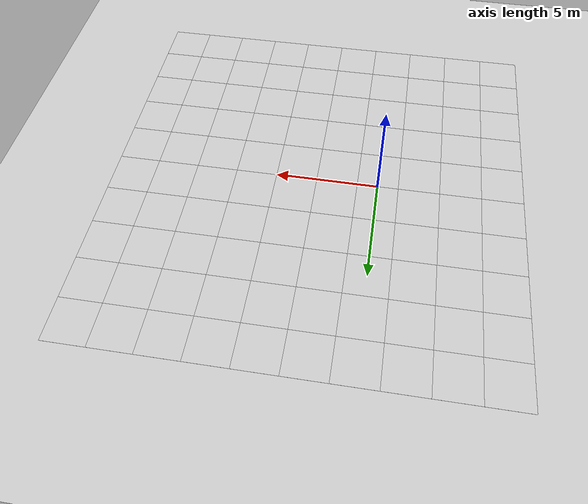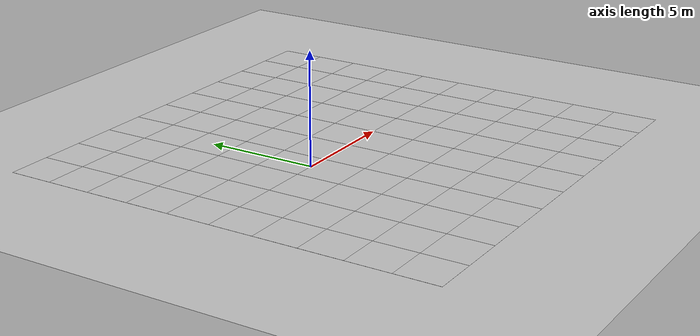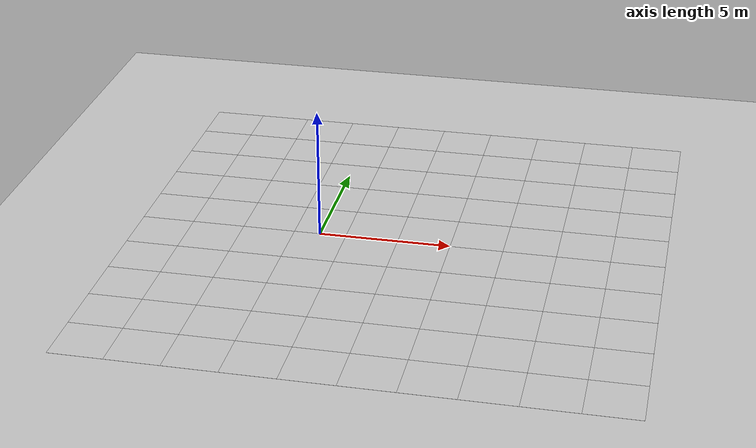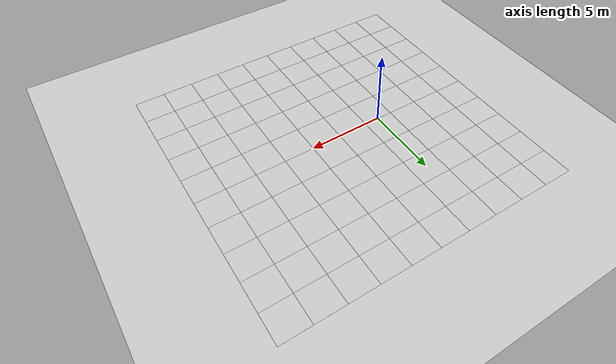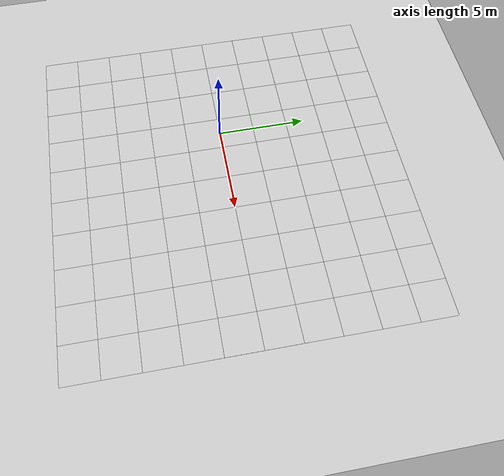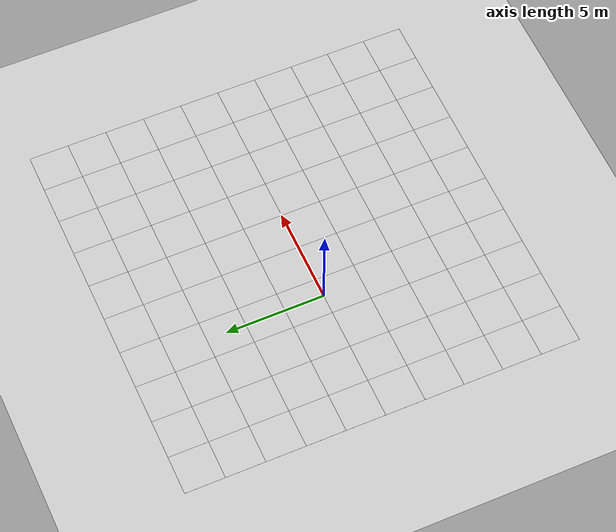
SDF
<sdf version="1.9">
 <world name="default">
  <model name="ground_plane">
   <static>true</static>
   <link name="link">
    <collision name="collision">
     <geometry><plane><normal>0 0 1</normal><size>1 1</size></plane></geometry>
    </collision>
    <visual name="visual">
     <geometry><plane><normal>0 0 1</normal><size>500 500</size></plane></geometry>
     <material>
      <ambient>0.8 0.8 0.8 1</ambient>
      <diffuse>0.8 0.8 0.8 1</diffuse>
      <specular>0.8 0.8 0.8 1</specular>
      <pbr>
       <metal>
        <albedo_map>models://ground_plane_textures/brown_mud_dry_diff_4k.jpg</albedo_map>
        <roughness>0.9</roughness>
        <metalness>0.0</metalness>
       </metal>
      </pbr>
     </material>
    </visual>
    <inertial>
     <mass>1</mass>
     <inertia><ixx>1</ixx><ixy>0</ixy><ixz>0</ixz><iyy>1</iyy><iyz>0</iyz><izz>1</izz></inertia>
    </inertial>
   </link>
  </model>
  <model name="soil_grid">
   <static>true</static>
   <link name="link">
    <visual name="soil_patch_1">
     <pose>-6.000 -9.000 0.005 0 0 0</pose>
     <geometry><plane><normal>0 0 1</normal><size>2.000 2.000</size></plane></geometry>
     <material>
      <ambient>0.8 0.8 0.8 1</ambient>
      <diffuse>0.8 0.8 0.8 1</diffuse>
      <specular>0.1 0.1 0.1 1</specular>
      <pbr>
       <metal>
        <albedo_map>models://ground_plane_textures/brown_mud_dry_diff_4k.jpg</albedo_map>
        <roughness>0.9</roughness>
        <metalness>0.0</metalness>
       </metal>
      </pbr>
     </material>
    </visual>
    <visual name="soil_patch_2">
     <pose>-6.000 -7.000 0.005 0 0 0</pose>
     <geometry><plane><normal>0 0 1</normal><size>2.000 2.000</size></plane></geometry>
     <material>
      <ambient>0.8 0.8 0.8 1</ambient>
      <diffuse>0.8 0.8 0.8 1</diffuse>
      <specular>0.1 0.1 0.1 1</specular>
      <pbr>
       <metal>
        <albedo_map>models://ground_plane_textures/brown_mud_dry_diff_4k.jpg</albedo_map>
        <roughness>0.9</roughness>
        <metalness>0.0</metalness>
       </metal>
      </pbr>
     </material>
    </visual>
    <visual name="soil_patch_3">
     <pose>-6.000 -5.000 0.005 0 0 0</pose>
     <geometry><plane><normal>0 0 1</normal><size>2.000 2.000</size></plane></geometry>
     <material>
      <ambient>0.8 0.8 0.8 1</ambient>
      <diffuse>0.8 0.8 0.8 1</diffuse>
      <specular>0.1 0.1 0.1 1</specular>
      <pbr>
       <metal>
        <albedo_map>models://ground_plane_textures/brown_mud_dry_diff_4k.jpg</albedo_map>
        <roughness>0.9</roughness>
        <metalness>0.0</metalness>
       </metal>
      </pbr>
     </material>
    </visual>
    <visual name="soil_patch_4">
     <pose>-6.000 -3.000 0.005 0 0 0</pose>
     <geometry><plane><normal>0 0 1</normal><size>2.000 2.000</size></plane></geometry>
     <material>
      <ambient>0.8 0.8 0.8 1</ambient>
      <diffuse>0.8 0.8 0.8 1</diffuse>
      <specular>0.1 0.1 0.1 1</specular>
      <pbr>
       <metal>
        <albedo_map>models://ground_plane_textures/brown_mud_dry_diff_4k.jpg</albedo_map>
        <roughness>0.9</roughness>
        <metalness>0.0</metalness>
       </metal>
      </pbr>
     </material>
    </visual>
    <visual name="soil_patch_5">
     <pose>-6.000 -1.000 0.005 0 0 0</pose>
     <geometry><plane><normal>0 0 1</normal><size>2.000 2.000</size></plane></geometry>
     <material>
      <ambient>0.8 0.8 0.8 1</ambient>
      <diffuse>0.8 0.8 0.8 1</diffuse>
      <specular>0.1 0.1 0.1 1</specular>
      <pbr>
       <metal>
        <albedo_map>models://ground_plane_textures/brown_mud_dry_diff_4k.jpg</albedo_map>
        <roughness>0.9</roughness>
        <metalness>0.0</metalness>
       </metal>
      </pbr>
     </material>
    </visual>
    <visual name="soil_patch_6">
     <pose>-6.000 1.000 0.005 0 0 0</pose>
     <geometry><plane><normal>0 0 1</normal><size>2.000 2.000</size></plane></geometry>
     <material>
      <ambient>0.8 0.8 0.8 1</ambient>
      <diffuse>0.8 0.8 0.8 1</diffuse>
      <specular>0.1 0.1 0.1 1</specular>
      <pbr>
       <metal>
        <albedo_map>models://ground_plane_textures/brown_mud_dry_diff_4k.jpg</albedo_map>
        <roughness>0.9</roughness>
        <metalness>0.0</metalness>
       </metal>
      </pbr>
     </material>
    </visual>
    <visual name="soil_patch_7">
     <pose>-6.000 3.000 0.005 0 0 0</pose>
     <geometry><plane><normal>0 0 1</normal><size>2.000 2.000</size></plane></geometry>
     <material>
      <ambient>0.8 0.8 0.8 1</ambient>
      <diffuse>0.8 0.8 0.8 1</diffuse>
      <specular>0.1 0.1 0.1 1</specular>
      <pbr>
       <metal>
        <albedo_map>models://ground_plane_textures/brown_mud_dry_diff_4k.jpg</albedo_map>
        <roughness>0.9</roughness>
        <metalness>0.0</metalness>
       </metal>
      </pbr>
     </material>
    </visual>
    <visual name="soil_patch_8">
     <pose>-6.000 5.000 0.005 0 0 0</pose>
     <geometry><plane><normal>0 0 1</normal><size>2.000 2.000</size></plane></geometry>
     <material>
      <ambient>0.8 0.8 0.8 1</ambient>
      <diffuse>0.8 0.8 0.8 1</diffuse>
      <specular>0.1 0.1 0.1 1</specular>
      <pbr>
       <metal>
        <albedo_map>models://ground_plane_textures/brown_mud_dry_diff_4k.jpg</albedo_map>
        <roughness>0.9</roughness>
        <metalness>0.0</metalness>
       </metal>
      </pbr>
     </material>
    </visual>
    <visual name="soil_patch_9">
     <pose>-6.000 7.000 0.005 0 0 0</pose>
     <geometry><plane><normal>0 0 1</normal><size>2.000 2.000</size></plane></geometry>
     <material>
      <ambient>0.8 0.8 0.8 1</ambient>
      <diffuse>0.8 0.8 0.8 1</diffuse>
      <specular>0.1 0.1 0.1 1</specular>
      <pbr>
       <metal>
        <albedo_map>models://ground_plane_textures/brown_mud_dry_diff_4k.jpg</albedo_map>
        <roughness>0.9</roughness>
        <metalness>0.0</metalness>
       </metal>
      </pbr>
     </material>
    </visual>
    <visual name="soil_patch_10">
     <pose>-6.000 9.000 0.005 0 0 0</pose>
     <geometry><plane><normal>0 0 1</normal><size>2.000 2.000</size></plane></geometry>
     <material>
      <ambient>0.8 0.8 0.8 1</ambient>
      <diffuse>0.8 0.8 0.8 1</diffuse>
      <specular>0.1 0.1 0.1 1</specular>
      <pbr>
       <metal>
        <albedo_map>models://ground_plane_textures/brown_mud_dry_diff_4k.jpg</albedo_map>
        <roughness>0.9</roughness>
        <metalness>0.0</metalness>
       </metal>
      </pbr>
     </material>
    </visual>
    <visual name="soil_patch_11">
     <pose>-4.000 -9.000 0.005 0 0 0</pose>
     <geometry><plane><normal>0 0 1</normal><size>2.000 2.000</size></plane></geometry>
     <material>
      <ambient>0.8 0.8 0.8 1</ambient>
      <diffuse>0.8 0.8 0.8 1</diffuse>
      <specular>0.1 0.1 0.1 1</specular>
      <pbr>
       <metal>
        <albedo_map>models://ground_plane_textures/brown_mud_dry_diff_4k.jpg</albedo_map>
        <roughness>0.9</roughness>
        <metalness>0.0</metalness>
       </metal>
      </pbr>
     </material>
    </visual>
    <visual name="soil_patch_12">
     <pose>-4.000 -7.000 0.005 0 0 0</pose>
     <geometry><plane><normal>0 0 1</normal><size>2.000 2.000</size></plane></geometry>
     <material>
      <ambient>0.8 0.8 0.8 1</ambient>
      <diffuse>0.8 0.8 0.8 1</diffuse>
      <specular>0.1 0.1 0.1 1</specular>
      <pbr>
       <metal>
        <albedo_map>models://ground_plane_textures/brown_mud_dry_diff_4k.jpg</albedo_map>
        <roughness>0.9</roughness>
        <metalness>0.0</metalness>
       </metal>
      </pbr>
     </material>
    </visual>
    <visual name="soil_patch_13">
     <pose>-4.000 -5.000 0.005 0 0 0</pose>
     <geometry><plane><normal>0 0 1</normal><size>2.000 2.000</size></plane></geometry>
     <material>
      <ambient>0.8 0.8 0.8 1</ambient>
      <diffuse>0.8 0.8 0.8 1</diffuse>
      <specular>0.1 0.1 0.1 1</specular>
      <pbr>
       <metal>
        <albedo_map>models://ground_plane_textures/brown_mud_dry_diff_4k.jpg</albedo_map>
        <roughness>0.9</roughness>
        <metalness>0.0</metalness>
       </metal>
      </pbr>
     </material>
    </visual>
    <visual name="soil_patch_14">
     <pose>-4.000 -3.000 0.005 0 0 0</pose>
     <geometry><plane><normal>0 0 1</normal><size>2.000 2.000</size></plane></geometry>
     <material>
      <ambient>0.8 0.8 0.8 1</ambient>
      <diffuse>0.8 0.8 0.8 1</diffuse>
      <specular>0.1 0.1 0.1 1</specular>
      <pbr>
       <metal>
        <albedo_map>models://ground_plane_textures/brown_mud_dry_diff_4k.jpg</albedo_map>
        <roughness>0.9</roughness>
        <metalness>0.0</metalness>
       </metal>
      </pbr>
     </material>
    </visual>
    <visual name="soil_patch_15">
     <pose>-4.000 -1.000 0.005 0 0 0</pose>
     <geometry><plane><normal>0 0 1</normal><size>2.000 2.000</size></plane></geometry>
     <material>
      <ambient>0.8 0.8 0.8 1</ambient>
      <diffuse>0.8 0.8 0.8 1</diffuse>
      <specular>0.1 0.1 0.1 1</specular>
      <pbr>
       <metal>
        <albedo_map>models://ground_plane_textures/brown_mud_dry_diff_4k.jpg</albedo_map>
        <roughness>0.9</roughness>
        <metalness>0.0</metalness>
       </metal>
      </pbr>
     </material>
    </visual>
    <visual name="soil_patch_16">
     <pose>-4.000 1.000 0.005 0 0 0</pose>
     <geometry><plane><normal>0 0 1</normal><size>2.000 2.000</size></plane></geometry>
     <material>
      <ambient>0.8 0.8 0.8 1</ambient>
      <diffuse>0.8 0.8 0.8 1</diffuse>
      <specular>0.1 0.1 0.1 1</specular>
      <pbr>
       <metal>
        <albedo_map>models://ground_plane_textures/brown_mud_dry_diff_4k.jpg</albedo_map>
        <roughness>0.9</roughness>
        <metalness>0.0</metalness>
       </metal>
      </pbr>
     </material>
    </visual>
    <visual name="soil_patch_17">
     <pose>-4.000 3.000 0.005 0 0 0</pose>
     <geometry><plane><normal>0 0 1</normal><size>2.000 2.000</size></plane></geometry>
     <material>
      <ambient>0.8 0.8 0.8 1</ambient>
      <diffuse>0.8 0.8 0.8 1</diffuse>
      <specular>0.1 0.1 0.1 1</specular>
      <pbr>
       <metal>
        <albedo_map>models://ground_plane_textures/brown_mud_dry_diff_4k.jpg</albedo_map>
        <roughness>0.9</roughness>
        <metalness>0.0</metalness>
       </metal>
      </pbr>
     </material>
    </visual>
    <visual name="soil_patch_18">
     <pose>-4.000 5.000 0.005 0 0 0</pose>
     <geometry><plane><normal>0 0 1</normal><size>2.000 2.000</size></plane></geometry>
     <material>
      <ambient>0.8 0.8 0.8 1</ambient>
      <diffuse>0.8 0.8 0.8 1</diffuse>
      <specular>0.1 0.1 0.1 1</specular>
      <pbr>
       <metal>
        <albedo_map>models://ground_plane_textures/brown_mud_dry_diff_4k.jpg</albedo_map>
        <roughness>0.9</roughness>
        <metalness>0.0</metalness>
       </metal>
      </pbr>
     </material>
    </visual>
    <visual name="soil_patch_19">
     <pose>-4.000 7.000 0.005 0 0 0</pose>
     <geometry><plane><normal>0 0 1</normal><size>2.000 2.000</size></plane></geometry>
     <material>
      <ambient>0.8 0.8 0.8 1</ambient>
      <diffuse>0.8 0.8 0.8 1</diffuse>
      <specular>0.1 0.1 0.1 1</specular>
      <pbr>
       <metal>
        <albedo_map>models://ground_plane_textures/brown_mud_dry_diff_4k.jpg</albedo_map>
        <roughness>0.9</roughness>
        <metalness>0.0</metalness>
       </metal>
      </pbr>
     </material>
    </visual>
    <visual name="soil_patch_20">
     <pose>-4.000 9.000 0.005 0 0 0</pose>
     <geometry><plane><normal>0 0 1</normal><size>2.000 2.000</size></plane></geometry>
     <material>
      <ambient>0.8 0.8 0.8 1</ambient>
      <diffuse>0.8 0.8 0.8 1</diffuse>
      <specular>0.1 0.1 0.1 1</specular>
      <pbr>
       <metal>
        <albedo_map>models://ground_plane_textures/brown_mud_dry_diff_4k.jpg</albedo_map>
        <roughness>0.9</roughness>
        <metalness>0.0</metalness>
       </metal>
      </pbr>
     </material>
    </visual>
    <visual name="soil_patch_21">
     <pose>-2.000 -9.000 0.005 0 0 0</pose>
     <geometry><plane><normal>0 0 1</normal><size>2.000 2.000</size></plane></geometry>
     <material>
      <ambient>0.8 0.8 0.8 1</ambient>
      <diffuse>0.8 0.8 0.8 1</diffuse>
      <specular>0.1 0.1 0.1 1</specular>
      <pbr>
       <metal>
        <albedo_map>models://ground_plane_textures/brown_mud_dry_diff_4k.jpg</albedo_map>
        <roughness>0.9</roughness>
        <metalness>0.0</metalness>
       </metal>
      </pbr>
     </material>
    </visual>
    <visual name="soil_patch_22">
     <pose>-2.000 -7.000 0.005 0 0 0</pose>
     <geometry><plane><normal>0 0 1</normal><size>2.000 2.000</size></plane></geometry>
     <material>
      <ambient>0.8 0.8 0.8 1</ambient>
      <diffuse>0.8 0.8 0.8 1</diffuse>
      <specular>0.1 0.1 0.1 1</specular>
      <pbr>
       <metal>
        <albedo_map>models://ground_plane_textures/brown_mud_dry_diff_4k.jpg</albedo_map>
        <roughness>0.9</roughness>
        <metalness>0.0</metalness>
       </metal>
      </pbr>
     </material>
    </visual>
    <visual name="soil_patch_23">
     <pose>-2.000 -5.000 0.005 0 0 0</pose>
     <geometry><plane><normal>0 0 1</normal><size>2.000 2.000</size></plane></geometry>
     <material>
      <ambient>0.8 0.8 0.8 1</ambient>
      <diffuse>0.8 0.8 0.8 1</diffuse>
      <specular>0.1 0.1 0.1 1</specular>
      <pbr>
       <metal>
        <albedo_map>models://ground_plane_textures/brown_mud_dry_diff_4k.jpg</albedo_map>
        <roughness>0.9</roughness>
        <metalness>0.0</metalness>
       </metal>
      </pbr>
     </material>
    </visual>
    <visual name="soil_patch_24">
     <pose>-2.000 -3.000 0.005 0 0 0</pose>
     <geometry><plane><normal>0 0 1</normal><size>2.000 2.000</size></plane></geometry>
     <material>
      <ambient>0.8 0.8 0.8 1</ambient>
      <diffuse>0.8 0.8 0.8 1</diffuse>
      <specular>0.1 0.1 0.1 1</specular>
      <pbr>
       <metal>
        <albedo_map>models://ground_plane_textures/brown_mud_dry_diff_4k.jpg</albedo_map>
        <roughness>0.9</roughness>
        <metalness>0.0</metalness>
       </metal>
      </pbr>
     </material>
    </visual>
    <visual name="soil_patch_25">
     <pose>-2.000 -1.000 0.005 0 0 0</pose>
     <geometry><plane><normal>0 0 1</normal><size>2.000 2.000</size></plane></geometry>
     <material>
      <ambient>0.8 0.8 0.8 1</ambient>
      <diffuse>0.8 0.8 0.8 1</diffuse>
      <specular>0.1 0.1 0.1 1</specular>
      <pbr>
       <metal>
        <albedo_map>models://ground_plane_textures/brown_mud_dry_diff_4k.jpg</albedo_map>
        <roughness>0.9</roughness>
        <metalness>0.0</metalness>
       </metal>
      </pbr>
     </material>
    </visual>
    <visual name="soil_patch_26">
     <pose>-2.000 1.000 0.005 0 0 0</pose>
     <geometry><plane><normal>0 0 1</normal><size>2.000 2.000</size></plane></geometry>
     <material>
      <ambient>0.8 0.8 0.8 1</ambient>
      <diffuse>0.8 0.8 0.8 1</diffuse>
      <specular>0.1 0.1 0.1 1</specular>
      <pbr>
       <metal>
        <albedo_map>models://ground_plane_textures/brown_mud_dry_diff_4k.jpg</albedo_map>
        <roughness>0.9</roughness>
        <metalness>0.0</metalness>
       </metal>
      </pbr>
     </material>
    </visual>
    <visual name="soil_patch_27">
     <pose>-2.000 3.000 0.005 0 0 0</pose>
     <geometry><plane><normal>0 0 1</normal><size>2.000 2.000</size></plane></geometry>
     <material>
      <ambient>0.8 0.8 0.8 1</ambient>
      <diffuse>0.8 0.8 0.8 1</diffuse>
      <specular>0.1 0.1 0.1 1</specular>
      <pbr>
       <metal>
        <albedo_map>models://ground_plane_textures/brown_mud_dry_diff_4k.jpg</albedo_map>
        <roughness>0.9</roughness>
        <metalness>0.0</metalness>
       </metal>
      </pbr>
     </material>
    </visual>
    <visual name="soil_patch_28">
     <pose>-2.000 5.000 0.005 0 0 0</pose>
     <geometry><plane><normal>0 0 1</normal><size>2.000 2.000</size></plane></geometry>
     <material>
      <ambient>0.8 0.8 0.8 1</ambient>
      <diffuse>0.8 0.8 0.8 1</diffuse>
      <specular>0.1 0.1 0.1 1</specular>
      <pbr>
       <metal>
        <albedo_map>models://ground_plane_textures/brown_mud_dry_diff_4k.jpg</albedo_map>
        <roughness>0.9</roughness>
        <metalness>0.0</metalness>
       </metal>
      </pbr>
     </material>
    </visual>
    <visual name="soil_patch_29">
     <pose>-2.000 7.000 0.005 0 0 0</pose>
     <geometry><plane><normal>0 0 1</normal><size>2.000 2.000</size></plane></geometry>
     <material>
      <ambient>0.8 0.8 0.8 1</ambient>
      <diffuse>0.8 0.8 0.8 1</diffuse>
      <specular>0.1 0.1 0.1 1</specular>
      <pbr>
       <metal>
        <albedo_map>models://ground_plane_textures/brown_mud_dry_diff_4k.jpg</albedo_map>
        <roughness>0.9</roughness>
        <metalness>0.0</metalness>
       </metal>
      </pbr>
     </material>
    </visual>
    <visual name="soil_patch_30">
     <pose>-2.000 9.000 0.005 0 0 0</pose>
     <geometry><plane><normal>0 0 1</normal><size>2.000 2.000</size></plane></geometry>
     <material>
      <ambient>0.8 0.8 0.8 1</ambient>
      <diffuse>0.8 0.8 0.8 1</diffuse>
      <specular>0.1 0.1 0.1 1</specular>
      <pbr>
       <metal>
        <albedo_map>models://ground_plane_textures/brown_mud_dry_diff_4k.jpg</albedo_map>
        <roughness>0.9</roughness>
        <metalness>0.0</metalness>
       </metal>
      </pbr>
     </material>
    </visual>
    <visual name="soil_patch_31">
     <pose>0.000 -9.000 0.005 0 0 0</pose>
     <geometry><plane><normal>0 0 1</normal><size>2.000 2.000</size></plane></geometry>
     <material>
      <ambient>0.8 0.8 0.8 1</ambient>
      <diffuse>0.8 0.8 0.8 1</diffuse>
      <specular>0.1 0.1 0.1 1</specular>
      <pbr>
       <metal>
        <albedo_map>models://ground_plane_textures/brown_mud_dry_diff_4k.jpg</albedo_map>
        <roughness>0.9</roughness>
        <metalness>0.0</metalness>
       </metal>
      </pbr>
     </material>
    </visual>
    <visual name="soil_patch_32">
     <pose>0.000 -7.000 0.005 0 0 0</pose>
     <geometry><plane><normal>0 0 1</normal><size>2.000 2.000</size></plane></geometry>
     <material>
      <ambient>0.8 0.8 0.8 1</ambient>
      <diffuse>0.8 0.8 0.8 1</diffuse>
      <specular>0.1 0.1 0.1 1</specular>
      <pbr>
       <metal>
        <albedo_map>models://ground_plane_textures/brown_mud_dry_diff_4k.jpg</albedo_map>
        <roughness>0.9</roughness>
        <metalness>0.0</metalness>
       </metal>
      </pbr>
     </material>
    </visual>
    <visual name="soil_patch_33">
     <pose>0.000 -5.000 0.005 0 0 0</pose>
     <geometry><plane><normal>0 0 1</normal><size>2.000 2.000</size></plane></geometry>
     <material>
      <ambient>0.8 0.8 0.8 1</ambient>
      <diffuse>0.8 0.8 0.8 1</diffuse>
      <specular>0.1 0.1 0.1 1</specular>
      <pbr>
       <metal>
        <albedo_map>models://ground_plane_textures/brown_mud_dry_diff_4k.jpg</albedo_map>
        <roughness>0.9</roughness>
        <metalness>0.0</metalness>
       </metal>
      </pbr>
     </material>
    </visual>
    <visual name="soil_patch_34">
     <pose>0.000 -3.000 0.005 0 0 0</pose>
     <geometry><plane><normal>0 0 1</normal><size>2.000 2.000</size></plane></geometry>
     <material>
      <ambient>0.8 0.8 0.8 1</ambient>
      <diffuse>0.8 0.8 0.8 1</diffuse>
      <specular>0.1 0.1 0.1 1</specular>
      <pbr>
       <metal>
        <albedo_map>models://ground_plane_textures/brown_mud_dry_diff_4k.jpg</albedo_map>
        <roughness>0.9</roughness>
        <metalness>0.0</metalness>
       </metal>
      </pbr>
     </material>
    </visual>
    <visual name="soil_patch_35">
     <pose>0.000 -1.000 0.005 0 0 0</pose>
     <geometry><plane><normal>0 0 1</normal><size>2.000 2.000</size></plane></geometry>
     <material>
      <ambient>0.8 0.8 0.8 1</ambient>
      <diffuse>0.8 0.8 0.8 1</diffuse>
      <specular>0.1 0.1 0.1 1</specular>
      <pbr>
       <metal>
        <albedo_map>models://ground_plane_textures/brown_mud_dry_diff_4k.jpg</albedo_map>
        <roughness>0.9</roughness>
        <metalness>0.0</metalness>
       </metal>
      </pbr>
     </material>
    </visual>
    <visual name="soil_patch_36">
     <pose>0.000 1.000 0.005 0 0 0</pose>
     <geometry><plane><normal>0 0 1</normal><size>2.000 2.000</size></plane></geometry>
     <material>
      <ambient>0.8 0.8 0.8 1</ambient>
      <diffuse>0.8 0.8 0.8 1</diffuse>
      <specular>0.1 0.1 0.1 1</specular>
      <pbr>
       <metal>
        <albedo_map>models://ground_plane_textures/brown_mud_dry_diff_4k.jpg</albedo_map>
        <roughness>0.9</roughness>
        <metalness>0.0</metalness>
       </metal>
      </pbr>
     </material>
    </visual>
    <visual name="soil_patch_37">
     <pose>0.000 3.000 0.005 0 0 0</pose>
     <geometry><plane><normal>0 0 1</normal><size>2.000 2.000</size></plane></geometry>
     <material>
      <ambient>0.8 0.8 0.8 1</ambient>
      <diffuse>0.8 0.8 0.8 1</diffuse>
      <specular>0.1 0.1 0.1 1</specular>
      <pbr>
       <metal>
        <albedo_map>models://ground_plane_textures/brown_mud_dry_diff_4k.jpg</albedo_map>
        <roughness>0.9</roughness>
        <metalness>0.0</metalness>
       </metal>
      </pbr>
     </material>
    </visual>
    <visual name="soil_patch_38">
     <pose>0.000 5.000 0.005 0 0 0</pose>
     <geometry><plane><normal>0 0 1</normal><size>2.000 2.000</size></plane></geometry>
     <material>
      <ambient>0.8 0.8 0.8 1</ambient>
      <diffuse>0.8 0.8 0.8 1</diffuse>
      <specular>0.1 0.1 0.1 1</specular>
      <pbr>
       <metal>
        <albedo_map>models://ground_plane_textures/brown_mud_dry_diff_4k.jpg</albedo_map>
        <roughness>0.9</roughness>
        <metalness>0.0</metalness>
       </metal>
      </pbr>
     </material>
    </visual>
    <visual name="soil_patch_39">
     <pose>0.000 7.000 0.005 0 0 0</pose>
     <geometry><plane><normal>0 0 1</normal><size>2.000 2.000</size></plane></geometry>
     <material>
      <ambient>0.8 0.8 0.8 1</ambient>
      <diffuse>0.8 0.8 0.8 1</diffuse>
      <specular>0.1 0.1 0.1 1</specular>
      <pbr>
       <metal>
        <albedo_map>models://ground_plane_textures/brown_mud_dry_diff_4k.jpg</albedo_map>
        <roughness>0.9</roughness>
        <metalness>0.0</metalness>
       </metal>
      </pbr>
     </material>
    </visual>
    <visual name="soil_patch_40">
     <pose>0.000 9.000 0.005 0 0 0</pose>
     <geometry><plane><normal>0 0 1</normal><size>2.000 2.000</size></plane></geometry>
     <material>
      <ambient>0.8 0.8 0.8 1</ambient>
      <diffuse>0.8 0.8 0.8 1</diffuse>
      <specular>0.1 0.1 0.1 1</specular>
      <pbr>
       <metal>
        <albedo_map>models://ground_plane_textures/brown_mud_dry_diff_4k.jpg</albedo_map>
        <roughness>0.9</roughness>
        <metalness>0.0</metalness>
       </metal>
      </pbr>
     </material>
    </visual>
    <visual name="soil_patch_41">
     <pose>2.000 -9.000 0.005 0 0 0</pose>
     <geometry><plane><normal>0 0 1</normal><size>2.000 2.000</size></plane></geometry>
     <material>
      <ambient>0.8 0.8 0.8 1</ambient>
      <diffuse>0.8 0.8 0.8 1</diffuse>
      <specular>0.1 0.1 0.1 1</specular>
      <pbr>
       <metal>
        <albedo_map>models://ground_plane_textures/brown_mud_dry_diff_4k.jpg</albedo_map>
        <roughness>0.9</roughness>
        <metalness>0.0</metalness>
       </metal>
      </pbr>
     </material>
    </visual>
    <visual name="soil_patch_42">
     <pose>2.000 -7.000 0.005 0 0 0</pose>
     <geometry><plane><normal>0 0 1</normal><size>2.000 2.000</size></plane></geometry>
     <material>
      <ambient>0.8 0.8 0.8 1</ambient>
      <diffuse>0.8 0.8 0.8 1</diffuse>
      <specular>0.1 0.1 0.1 1</specular>
      <pbr>
       <metal>
        <albedo_map>models://ground_plane_textures/brown_mud_dry_diff_4k.jpg</albedo_map>
        <roughness>0.9</roughness>
        <metalness>0.0</metalness>
       </metal>
      </pbr>
     </material>
    </visual>
    <visual name="soil_patch_43">
     <pose>2.000 -5.000 0.005 0 0 0</pose>
     <geometry><plane><normal>0 0 1</normal><size>2.000 2.000</size></plane></geometry>
     <material>
      <ambient>0.8 0.8 0.8 1</ambient>
      <diffuse>0.8 0.8 0.8 1</diffuse>
      <specular>0.1 0.1 0.1 1</specular>
      <pbr>
       <metal>
        <albedo_map>models://ground_plane_textures/brown_mud_dry_diff_4k.jpg</albedo_map>
        <roughness>0.9</roughness>
        <metalness>0.0</metalness>
       </metal>
      </pbr>
     </material>
    </visual>
    <visual name="soil_patch_44">
     <pose>2.000 -3.000 0.005 0 0 0</pose>
     <geometry><plane><normal>0 0 1</normal><size>2.000 2.000</size></plane></geometry>
     <material>
      <ambient>0.8 0.8 0.8 1</ambient>
      <diffuse>0.8 0.8 0.8 1</diffuse>
      <specular>0.1 0.1 0.1 1</specular>
      <pbr>
       <metal>
        <albedo_map>models://ground_plane_textures/brown_mud_dry_diff_4k.jpg</albedo_map>
        <roughness>0.9</roughness>
        <metalness>0.0</metalness>
       </metal>
      </pbr>
     </material>
    </visual>
    <visual name="soil_patch_45">
     <pose>2.000 -1.000 0.005 0 0 0</pose>
     <geometry><plane><normal>0 0 1</normal><size>2.000 2.000</size></plane></geometry>
     <material>
      <ambient>0.8 0.8 0.8 1</ambient>
      <diffuse>0.8 0.8 0.8 1</diffuse>
      <specular>0.1 0.1 0.1 1</specular>
      <pbr>
       <metal>
        <albedo_map>models://ground_plane_textures/brown_mud_dry_diff_4k.jpg</albedo_map>
        <roughness>0.9</roughness>
        <metalness>0.0</metalness>
       </metal>
      </pbr>
     </material>
    </visual>
    <visual name="soil_patch_46">
     <pose>2.000 1.000 0.005 0 0 0</pose>
     <geometry><plane><normal>0 0 1</normal><size>2.000 2.000</size></plane></geometry>
     <material>
      <ambient>0.8 0.8 0.8 1</ambient>
      <diffuse>0.8 0.8 0.8 1</diffuse>
      <specular>0.1 0.1 0.1 1</specular>
      <pbr>
       <metal>
        <albedo_map>models://ground_plane_textures/brown_mud_dry_diff_4k.jpg</albedo_map>
        <roughness>0.9</roughness>
        <metalness>0.0</metalness>
       </metal>
      </pbr>
     </material>
    </visual>
    <visual name="soil_patch_47">
     <pose>2.000 3.000 0.005 0 0 0</pose>
     <geometry><plane><normal>0 0 1</normal><size>2.000 2.000</size></plane></geometry>
     <material>
      <ambient>0.8 0.8 0.8 1</ambient>
      <diffuse>0.8 0.8 0.8 1</diffuse>
      <specular>0.1 0.1 0.1 1</specular>
      <pbr>
       <metal>
        <albedo_map>models://ground_plane_textures/brown_mud_dry_diff_4k.jpg</albedo_map>
        <roughness>0.9</roughness>
        <metalness>0.0</metalness>
       </metal>
      </pbr>
     </material>
    </visual>
    <visual name="soil_patch_48">
     <pose>2.000 5.000 0.005 0 0 0</pose>
     <geometry><plane><normal>0 0 1</normal><size>2.000 2.000</size></plane></geometry>
     <material>
      <ambient>0.8 0.8 0.8 1</ambient>
      <diffuse>0.8 0.8 0.8 1</diffuse>
      <specular>0.1 0.1 0.1 1</specular>
      <pbr>
       <metal>
        <albedo_map>models://ground_plane_textures/brown_mud_dry_diff_4k.jpg</albedo_map>
        <roughness>0.9</roughness>
        <metalness>0.0</metalness>
       </metal>
      </pbr>
     </material>
    </visual>
    <visual name="soil_patch_49">
     <pose>2.000 7.000 0.005 0 0 0</pose>
     <geometry><plane><normal>0 0 1</normal><size>2.000 2.000</size></plane></geometry>
     <material>
      <ambient>0.8 0.8 0.8 1</ambient>
      <diffuse>0.8 0.8 0.8 1</diffuse>
      <specular>0.1 0.1 0.1 1</specular>
      <pbr>
       <metal>
        <albedo_map>models://ground_plane_textures/brown_mud_dry_diff_4k.jpg</albedo_map>
        <roughness>0.9</roughness>
        <metalness>0.0</metalness>
       </metal>
      </pbr>
     </material>
    </visual>
    <visual name="soil_patch_50">
     <pose>2.000 9.000 0.005 0 0 0</pose>
     <geometry><plane><normal>0 0 1</normal><size>2.000 2.000</size></plane></geometry>
     <material>
      <ambient>0.8 0.8 0.8 1</ambient>
      <diffuse>0.8 0.8 0.8 1</diffuse>
      <specular>0.1 0.1 0.1 1</specular>
      <pbr>
       <metal>
        <albedo_map>models://ground_plane_textures/brown_mud_dry_diff_4k.jpg</albedo_map>
        <roughness>0.9</roughness>
        <metalness>0.0</metalness>
       </metal>
      </pbr>
     </material>
    </visual>
    <visual name="soil_patch_51">
     <pose>4.000 -9.000 0.005 0 0 0</pose>
     <geometry><plane><normal>0 0 1</normal><size>2.000 2.000</size></plane></geometry>
     <material>
      <ambient>0.8 0.8 0.8 1</ambient>
      <diffuse>0.8 0.8 0.8 1</diffuse>
      <specular>0.1 0.1 0.1 1</specular>
      <pbr>
       <metal>
        <albedo_map>models://ground_plane_textures/brown_mud_dry_diff_4k.jpg</albedo_map>
        <roughness>0.9</roughness>
        <metalness>0.0</metalness>
       </metal>
      </pbr>
     </material>
    </visual>
    <visual name="soil_patch_52">
     <pose>4.000 -7.000 0.005 0 0 0</pose>
     <geometry><plane><normal>0 0 1</normal><size>2.000 2.000</size></plane></geometry>
     <material>
      <ambient>0.8 0.8 0.8 1</ambient>
      <diffuse>0.8 0.8 0.8 1</diffuse>
      <specular>0.1 0.1 0.1 1</specular>
      <pbr>
       <metal>
        <albedo_map>models://ground_plane_textures/brown_mud_dry_diff_4k.jpg</albedo_map>
        <roughness>0.9</roughness>
        <metalness>0.0</metalness>
       </metal>
      </pbr>
     </material>
    </visual>
    <visual name="soil_patch_53">
     <pose>4.000 -5.000 0.005 0 0 0</pose>
     <geometry><plane><normal>0 0 1</normal><size>2.000 2.000</size></plane></geometry>
     <material>
      <ambient>0.8 0.8 0.8 1</ambient>
      <diffuse>0.8 0.8 0.8 1</diffuse>
      <specular>0.1 0.1 0.1 1</specular>
      <pbr>
       <metal>
        <albedo_map>models://ground_plane_textures/brown_mud_dry_diff_4k.jpg</albedo_map>
        <roughness>0.9</roughness>
        <metalness>0.0</metalness>
       </metal>
      </pbr>
     </material>
    </visual>
    <visual name="soil_patch_54">
     <pose>4.000 -3.000 0.005 0 0 0</pose>
     <geometry><plane><normal>0 0 1</normal><size>2.000 2.000</size></plane></geometry>
     <material>
      <ambient>0.8 0.8 0.8 1</ambient>
      <diffuse>0.8 0.8 0.8 1</diffuse>
      <specular>0.1 0.1 0.1 1</specular>
      <pbr>
       <metal>
        <albedo_map>models://ground_plane_textures/brown_mud_dry_diff_4k.jpg</albedo_map>
        <roughness>0.9</roughness>
        <metalness>0.0</metalness>
       </metal>
      </pbr>
     </material>
    </visual>
    <visual name="soil_patch_55">
     <pose>4.000 -1.000 0.005 0 0 0</pose>
     <geometry><plane><normal>0 0 1</normal><size>2.000 2.000</size></plane></geometry>
     <material>
      <ambient>0.8 0.8 0.8 1</ambient>
      <diffuse>0.8 0.8 0.8 1</diffuse>
      <specular>0.1 0.1 0.1 1</specular>
      <pbr>
       <metal>
        <albedo_map>models://ground_plane_textures/brown_mud_dry_diff_4k.jpg</albedo_map>
        <roughness>0.9</roughness>
        <metalness>0.0</metalness>
       </metal>
      </pbr>
     </material>
    </visual>
    <visual name="soil_patch_56">
     <pose>4.000 1.000 0.005 0 0 0</pose>
     <geometry><plane><normal>0 0 1</normal><size>2.000 2.000</size></plane></geometry>
     <material>
      <ambient>0.8 0.8 0.8 1</ambient>
      <diffuse>0.8 0.8 0.8 1</diffuse>
      <specular>0.1 0.1 0.1 1</specular>
      <pbr>
       <metal>
        <albedo_map>models://ground_plane_textures/brown_mud_dry_diff_4k.jpg</albedo_map>
        <roughness>0.9</roughness>
        <metalness>0.0</metalness>
       </metal>
      </pbr>
     </material>
    </visual>
    <visual name="soil_patch_57">
     <pose>4.000 3.000 0.005 0 0 0</pose>
     <geometry><plane><normal>0 0 1</normal><size>2.000 2.000</size></plane></geometry>
     <material>
      <ambient>0.8 0.8 0.8 1</ambient>
      <diffuse>0.8 0.8 0.8 1</diffuse>
      <specular>0.1 0.1 0.1 1</specular>
      <pbr>
       <metal>
        <albedo_map>models://ground_plane_textures/brown_mud_dry_diff_4k.jpg</albedo_map>
        <roughness>0.9</roughness>
        <metalness>0.0</metalness>
       </metal>
      </pbr>
     </material>
    </visual>
    <visual name="soil_patch_58">
     <pose>4.000 5.000 0.005 0 0 0</pose>
     <geometry><plane><normal>0 0 1</normal><size>2.000 2.000</size></plane></geometry>
     <material>
      <ambient>0.8 0.8 0.8 1</ambient>
      <diffuse>0.8 0.8 0.8 1</diffuse>
      <specular>0.1 0.1 0.1 1</specular>
      <pbr>
       <metal>
        <albedo_map>models://ground_plane_textures/brown_mud_dry_diff_4k.jpg</albedo_map>
        <roughness>0.9</roughness>
        <metalness>0.0</metalness>
       </metal>
      </pbr>
     </material>
    </visual>
    <visual name="soil_patch_59">
     <pose>4.000 7.000 0.005 0 0 0</pose>
     <geometry><plane><normal>0 0 1</normal><size>2.000 2.000</size></plane></geometry>
     <material>
      <ambient>0.8 0.8 0.8 1</ambient>
      <diffuse>0.8 0.8 0.8 1</diffuse>
      <specular>0.1 0.1 0.1 1</specular>
      <pbr>
       <metal>
        <albedo_map>models://ground_plane_textures/brown_mud_dry_diff_4k.jpg</albedo_map>
        <roughness>0.9</roughness>
        <metalness>0.0</metalness>
       </metal>
      </pbr>
     </material>
    </visual>
    <visual name="soil_patch_60">
     <pose>4.000 9.000 0.005 0 0 0</pose>
     <geometry><plane><normal>0 0 1</normal><size>2.000 2.000</size></plane></geometry>
     <material>
      <ambient>0.8 0.8 0.8 1</ambient>
      <diffuse>0.8 0.8 0.8 1</diffuse>
      <specular>0.1 0.1 0.1 1</specular>
      <pbr>
       <metal>
        <albedo_map>models://ground_plane_textures/brown_mud_dry_diff_4k.jpg</albedo_map>
        <roughness>0.9</roughness>
        <metalness>0.0</metalness>
       </metal>
      </pbr>
     </material>
    </visual>
    <visual name="soil_patch_61">
     <pose>6.000 -9.000 0.005 0 0 0</pose>
     <geometry><plane><normal>0 0 1</normal><size>2.000 2.000</size></plane></geometry>
     <material>
      <ambient>0.8 0.8 0.8 1</ambient>
      <diffuse>0.8 0.8 0.8 1</diffuse>
      <specular>0.1 0.1 0.1 1</specular>
      <pbr>
       <metal>
        <albedo_map>models://ground_plane_textures/brown_mud_dry_diff_4k.jpg</albedo_map>
        <roughness>0.9</roughness>
        <metalness>0.0</metalness>
       </metal>
      </pbr>
     </material>
    </visual>
    <visual name="soil_patch_62">
     <pose>6.000 -7.000 0.005 0 0 0</pose>
     <geometry><plane><normal>0 0 1</normal><size>2.000 2.000</size></plane></geometry>
     <material>
      <ambient>0.8 0.8 0.8 1</ambient>
      <diffuse>0.8 0.8 0.8 1</diffuse>
      <specular>0.1 0.1 0.1 1</specular>
      <pbr>
       <metal>
        <albedo_map>models://ground_plane_textures/brown_mud_dry_diff_4k.jpg</albedo_map>
        <roughness>0.9</roughness>
        <metalness>0.0</metalness>
       </metal>
      </pbr>
     </material>
    </visual>
    <visual name="soil_patch_63">
     <pose>6.000 -5.000 0.005 0 0 0</pose>
     <geometry><plane><normal>0 0 1</normal><size>2.000 2.000</size></plane></geometry>
     <material>
      <ambient>0.8 0.8 0.8 1</ambient>
      <diffuse>0.8 0.8 0.8 1</diffuse>
      <specular>0.1 0.1 0.1 1</specular>
      <pbr>
       <metal>
        <albedo_map>models://ground_plane_textures/brown_mud_dry_diff_4k.jpg</albedo_map>
        <roughness>0.9</roughness>
        <metalness>0.0</metalness>
       </metal>
      </pbr>
     </material>
    </visual>
    <visual name="soil_patch_64">
     <pose>6.000 -3.000 0.005 0 0 0</pose>
     <geometry><plane><normal>0 0 1</normal><size>2.000 2.000</size></plane></geometry>
     <material>
      <ambient>0.8 0.8 0.8 1</ambient>
      <diffuse>0.8 0.8 0.8 1</diffuse>
      <specular>0.1 0.1 0.1 1</specular>
      <pbr>
       <metal>
        <albedo_map>models://ground_plane_textures/brown_mud_dry_diff_4k.jpg</albedo_map>
        <roughness>0.9</roughness>
        <metalness>0.0</metalness>
       </metal>
      </pbr>
     </material>
    </visual>
    <visual name="soil_patch_65">
     <pose>6.000 -1.000 0.005 0 0 0</pose>
     <geometry><plane><normal>0 0 1</normal><size>2.000 2.000</size></plane></geometry>
     <material>
      <ambient>0.8 0.8 0.8 1</ambient>
      <diffuse>0.8 0.8 0.8 1</diffuse>
      <specular>0.1 0.1 0.1 1</specular>
      <pbr>
       <metal>
        <albedo_map>models://ground_plane_textures/brown_mud_dry_diff_4k.jpg</albedo_map>
        <roughness>0.9</roughness>
        <metalness>0.0</metalness>
       </metal>
      </pbr>
     </material>
    </visual>
    <visual name="soil_patch_66">
     <pose>6.000 1.000 0.005 0 0 0</pose>
     <geometry><plane><normal>0 0 1</normal><size>2.000 2.000</size></plane></geometry>
     <material>
      <ambient>0.8 0.8 0.8 1</ambient>
      <diffuse>0.8 0.8 0.8 1</diffuse>
      <specular>0.1 0.1 0.1 1</specular>
      <pbr>
       <metal>
        <albedo_map>models://ground_plane_textures/brown_mud_dry_diff_4k.jpg</albedo_map>
        <roughness>0.9</roughness>
        <metalness>0.0</metalness>
       </metal>
      </pbr>
     </material>
    </visual>
    <visual name="soil_patch_67">
     <pose>6.000 3.000 0.005 0 0 0</pose>
     <geometry><plane><normal>0 0 1</normal><size>2.000 2.000</size></plane></geometry>
     <material>
      <ambient>0.8 0.8 0.8 1</ambient>
      <diffuse>0.8 0.8 0.8 1</diffuse>
      <specular>0.1 0.1 0.1 1</specular>
      <pbr>
       <metal>
        <albedo_map>models://ground_plane_textures/brown_mud_dry_diff_4k.jpg</albedo_map>
        <roughness>0.9</roughness>
        <metalness>0.0</metalness>
       </metal>
      </pbr>
     </material>
    </visual>
    <visual name="soil_patch_68">
     <pose>6.000 5.000 0.005 0 0 0</pose>
     <geometry><plane><normal>0 0 1</normal><size>2.000 2.000</size></plane></geometry>
     <material>
      <ambient>0.8 0.8 0.8 1</ambient>
      <diffuse>0.8 0.8 0.8 1</diffuse>
      <specular>0.1 0.1 0.1 1</specular>
      <pbr>
       <metal>
        <albedo_map>models://ground_plane_textures/brown_mud_dry_diff_4k.jpg</albedo_map>
        <roughness>0.9</roughness>
        <metalness>0.0</metalness>
       </metal>
      </pbr>
     </material>
    </visual>
    <visual name="soil_patch_69">
     <pose>6.000 7.000 0.005 0 0 0</pose>
     <geometry><plane><normal>0 0 1</normal><size>2.000 2.000</size></plane></geometry>
     <material>
      <ambient>0.8 0.8 0.8 1</ambient>
      <diffuse>0.8 0.8 0.8 1</diffuse>
      <specular>0.1 0.1 0.1 1</specular>
      <pbr>
       <metal>
        <albedo_map>models://ground_plane_textures/brown_mud_dry_diff_4k.jpg</albedo_map>
        <roughness>0.9</roughness>
        <metalness>0.0</metalness>
       </metal>
      </pbr>
     </material>
    </visual>
    <visual name="soil_patch_70">
     <pose>6.000 9.000 0.005 0 0 0</pose>
     <geometry><plane><normal>0 0 1</normal><size>2.000 2.000</size></plane></geometry>
     <material>
      <ambient>0.8 0.8 0.8 1</ambient>
      <diffuse>0.8 0.8 0.8 1</diffuse>
      <specular>0.1 0.1 0.1 1</specular>
      <pbr>
       <metal>
        <albedo_map>models://ground_plane_textures/brown_mud_dry_diff_4k.jpg</albedo_map>
        <roughness>0.9</roughness>
        <metalness>0.0</metalness>
       </metal>
      </pbr>
     </material>
    </visual>
    <visual name="soil_patch_71">
     <pose>8.000 -9.000 0.005 0 0 0</pose>
     <geometry><plane><normal>0 0 1</normal><size>2.000 2.000</size></plane></geometry>
     <material>
      <ambient>0.8 0.8 0.8 1</ambient>
      <diffuse>0.8 0.8 0.8 1</diffuse>
      <specular>0.1 0.1 0.1 1</specular>
      <pbr>
       <metal>
        <albedo_map>models://ground_plane_textures/brown_mud_dry_diff_4k.jpg</albedo_map>
        <roughness>0.9</roughness>
        <metalness>0.0</metalness>
       </metal>
      </pbr>
     </material>
    </visual>
    <visual name="soil_patch_72">
     <pose>8.000 -7.000 0.005 0 0 0</pose>
     <geometry><plane><normal>0 0 1</normal><size>2.000 2.000</size></plane></geometry>
     <material>
      <ambient>0.8 0.8 0.8 1</ambient>
      <diffuse>0.8 0.8 0.8 1</diffuse>
      <specular>0.1 0.1 0.1 1</specular>
      <pbr>
       <metal>
        <albedo_map>models://ground_plane_textures/brown_mud_dry_diff_4k.jpg</albedo_map>
        <roughness>0.9</roughness>
        <metalness>0.0</metalness>
       </metal>
      </pbr>
     </material>
    </visual>
    <visual name="soil_patch_73">
     <pose>8.000 -5.000 0.005 0 0 0</pose>
     <geometry><plane><normal>0 0 1</normal><size>2.000 2.000</size></plane></geometry>
     <material>
      <ambient>0.8 0.8 0.8 1</ambient>
      <diffuse>0.8 0.8 0.8 1</diffuse>
      <specular>0.1 0.1 0.1 1</specular>
      <pbr>
       <metal>
        <albedo_map>models://ground_plane_textures/brown_mud_dry_diff_4k.jpg</albedo_map>
        <roughness>0.9</roughness>
        <metalness>0.0</metalness>
       </metal>
      </pbr>
     </material>
    </visual>
    <visual name="soil_patch_74">
     <pose>8.000 -3.000 0.005 0 0 0</pose>
     <geometry><plane><normal>0 0 1</normal><size>2.000 2.000</size></plane></geometry>
     <material>
      <ambient>0.8 0.8 0.8 1</ambient>
      <diffuse>0.8 0.8 0.8 1</diffuse>
      <specular>0.1 0.1 0.1 1</specular>
      <pbr>
       <metal>
        <albedo_map>models://ground_plane_textures/brown_mud_dry_diff_4k.jpg</albedo_map>
        <roughness>0.9</roughness>
        <metalness>0.0</metalness>
       </metal>
      </pbr>
     </material>
    </visual>
    <visual name="soil_patch_75">
     <pose>8.000 -1.000 0.005 0 0 0</pose>
     <geometry><plane><normal>0 0 1</normal><size>2.000 2.000</size></plane></geometry>
     <material>
      <ambient>0.8 0.8 0.8 1</ambient>
      <diffuse>0.8 0.8 0.8 1</diffuse>
      <specular>0.1 0.1 0.1 1</specular>
      <pbr>
       <metal>
        <albedo_map>models://ground_plane_textures/brown_mud_dry_diff_4k.jpg</albedo_map>
        <roughness>0.9</roughness>
        <metalness>0.0</metalness>
       </metal>
      </pbr>
     </material>
    </visual>
    <visual name="soil_patch_76">
     <pose>8.000 1.000 0.005 0 0 0</pose>
     <geometry><plane><normal>0 0 1</normal><size>2.000 2.000</size></plane></geometry>
     <material>
      <ambient>0.8 0.8 0.8 1</ambient>
      <diffuse>0.8 0.8 0.8 1</diffuse>
      <specular>0.1 0.1 0.1 1</specular>
      <pbr>
       <metal>
        <albedo_map>models://ground_plane_textures/brown_mud_dry_diff_4k.jpg</albedo_map>
        <roughness>0.9</roughness>
        <metalness>0.0</metalness>
       </metal>
      </pbr>
     </material>
    </visual>
    <visual name="soil_patch_77">
     <pose>8.000 3.000 0.005 0 0 0</pose>
     <geometry><plane><normal>0 0 1</normal><size>2.000 2.000</size></plane></geometry>
     <material>
      <ambient>0.8 0.8 0.8 1</ambient>
      <diffuse>0.8 0.8 0.8 1</diffuse>
      <specular>0.1 0.1 0.1 1</specular>
      <pbr>
       <metal>
        <albedo_map>models://ground_plane_textures/brown_mud_dry_diff_4k.jpg</albedo_map>
        <roughness>0.9</roughness>
        <metalness>0.0</metalness>
       </metal>
      </pbr>
     </material>
    </visual>
    <visual name="soil_patch_78">
     <pose>8.000 5.000 0.005 0 0 0</pose>
     <geometry><plane><normal>0 0 1</normal><size>2.000 2.000</size></plane></geometry>
     <material>
      <ambient>0.8 0.8 0.8 1</ambient>
      <diffuse>0.8 0.8 0.8 1</diffuse>
      <specular>0.1 0.1 0.1 1</specular>
      <pbr>
       <metal>
        <albedo_map>models://ground_plane_textures/brown_mud_dry_diff_4k.jpg</albedo_map>
        <roughness>0.9</roughness>
        <metalness>0.0</metalness>
       </metal>
      </pbr>
     </material>
    </visual>
    <visual name="soil_patch_79">
     <pose>8.000 7.000 0.005 0 0 0</pose>
     <geometry><plane><normal>0 0 1</normal><size>2.000 2.000</size></plane></geometry>
     <material>
      <ambient>0.8 0.8 0.8 1</ambient>
      <diffuse>0.8 0.8 0.8 1</diffuse>
      <specular>0.1 0.1 0.1 1</specular>
      <pbr>
       <metal>
        <albedo_map>models://ground_plane_textures/brown_mud_dry_diff_4k.jpg</albedo_map>
        <roughness>0.9</roughness>
        <metalness>0.0</metalness>
       </metal>
      </pbr>
     </material>
    </visual>
    <visual name="soil_patch_80">
     <pose>8.000 9.000 0.005 0 0 0</pose>
     <geometry><plane><normal>0 0 1</normal><size>2.000 2.000</size></plane></geometry>
     <material>
      <ambient>0.8 0.8 0.8 1</ambient>
      <diffuse>0.8 0.8 0.8 1</diffuse>
      <specular>0.1 0.1 0.1 1</specular>
      <pbr>
       <metal>
        <albedo_map>models://ground_plane_textures/brown_mud_dry_diff_4k.jpg</albedo_map>
        <roughness>0.9</roughness>
        <metalness>0.0</metalness>
       </metal>
      </pbr>
     </material>
    </visual>
    <visual name="soil_patch_81">
     <pose>10.000 -9.000 0.005 0 0 0</pose>
     <geometry><plane><normal>0 0 1</normal><size>2.000 2.000</size></plane></geometry>
     <material>
      <ambient>0.8 0.8 0.8 1</ambient>
      <diffuse>0.8 0.8 0.8 1</diffuse>
      <specular>0.1 0.1 0.1 1</specular>
      <pbr>
       <metal>
        <albedo_map>models://ground_plane_textures/brown_mud_dry_diff_4k.jpg</albedo_map>
        <roughness>0.9</roughness>
        <metalness>0.0</metalness>
       </metal>
      </pbr>
     </material>
    </visual>
    <visual name="soil_patch_82">
     <pose>10.000 -7.000 0.005 0 0 0</pose>
     <geometry><plane><normal>0 0 1</normal><size>2.000 2.000</size></plane></geometry>
     <material>
      <ambient>0.8 0.8 0.8 1</ambient>
      <diffuse>0.8 0.8 0.8 1</diffuse>
      <specular>0.1 0.1 0.1 1</specular>
      <pbr>
       <metal>
        <albedo_map>models://ground_plane_textures/brown_mud_dry_diff_4k.jpg</albedo_map>
        <roughness>0.9</roughness>
        <metalness>0.0</metalness>
       </metal>
      </pbr>
     </material>
    </visual>
    <visual name="soil_patch_83">
     <pose>10.000 -5.000 0.005 0 0 0</pose>
     <geometry><plane><normal>0 0 1</normal><size>2.000 2.000</size></plane></geometry>
     <material>
      <ambient>0.8 0.8 0.8 1</ambient>
      <diffuse>0.8 0.8 0.8 1</diffuse>
      <specular>0.1 0.1 0.1 1</specular>
      <pbr>
       <metal>
        <albedo_map>models://ground_plane_textures/brown_mud_dry_diff_4k.jpg</albedo_map>
        <roughness>0.9</roughness>
        <metalness>0.0</metalness>
       </metal>
      </pbr>
     </material>
    </visual>
    <visual name="soil_patch_84">
     <pose>10.000 -3.000 0.005 0 0 0</pose>
     <geometry><plane><normal>0 0 1</normal><size>2.000 2.000</size></plane></geometry>
     <material>
      <ambient>0.8 0.8 0.8 1</ambient>
      <diffuse>0.8 0.8 0.8 1</diffuse>
      <specular>0.1 0.1 0.1 1</specular>
      <pbr>
       <metal>
        <albedo_map>models://ground_plane_textures/brown_mud_dry_diff_4k.jpg</albedo_map>
        <roughness>0.9</roughness>
        <metalness>0.0</metalness>
       </metal>
      </pbr>
     </material>
    </visual>
    <visual name="soil_patch_85">
     <pose>10.000 -1.000 0.005 0 0 0</pose>
     <geometry><plane><normal>0 0 1</normal><size>2.000 2.000</size></plane></geometry>
     <material>
      <ambient>0.8 0.8 0.8 1</ambient>
      <diffuse>0.8 0.8 0.8 1</diffuse>
      <specular>0.1 0.1 0.1 1</specular>
      <pbr>
       <metal>
        <albedo_map>models://ground_plane_textures/brown_mud_dry_diff_4k.jpg</albedo_map>
        <roughness>0.9</roughness>
        <metalness>0.0</metalness>
       </metal>
      </pbr>
     </material>
    </visual>
    <visual name="soil_patch_86">
     <pose>10.000 1.000 0.005 0 0 0</pose>
     <geometry><plane><normal>0 0 1</normal><size>2.000 2.000</size></plane></geometry>
     <material>
      <ambient>0.8 0.8 0.8 1</ambient>
      <diffuse>0.8 0.8 0.8 1</diffuse>
      <specular>0.1 0.1 0.1 1</specular>
      <pbr>
       <metal>
        <albedo_map>models://ground_plane_textures/brown_mud_dry_diff_4k.jpg</albedo_map>
        <roughness>0.9</roughness>
        <metalness>0.0</metalness>
       </metal>
      </pbr>
     </material>
    </visual>
    <visual name="soil_patch_87">
     <pose>10.000 3.000 0.005 0 0 0</pose>
     <geometry><plane><normal>0 0 1</normal><size>2.000 2.000</size></plane></geometry>
     <material>
      <ambient>0.8 0.8 0.8 1</ambient>
      <diffuse>0.8 0.8 0.8 1</diffuse>
      <specular>0.1 0.1 0.1 1</specular>
      <pbr>
       <metal>
        <albedo_map>models://ground_plane_textures/brown_mud_dry_diff_4k.jpg</albedo_map>
        <roughness>0.9</roughness>
        <metalness>0.0</metalness>
       </metal>
      </pbr>
     </material>
    </visual>
    <visual name="soil_patch_88">
     <pose>10.000 5.000 0.005 0 0 0</pose>
     <geometry><plane><normal>0 0 1</normal><size>2.000 2.000</size></plane></geometry>
     <material>
      <ambient>0.8 0.8 0.8 1</ambient>
      <diffuse>0.8 0.8 0.8 1</diffuse>
      <specular>0.1 0.1 0.1 1</specular>
      <pbr>
       <metal>
        <albedo_map>models://ground_plane_textures/brown_mud_dry_diff_4k.jpg</albedo_map>
        <roughness>0.9</roughness>
        <metalness>0.0</metalness>
       </metal>
      </pbr>
     </material>
    </visual>
    <visual name="soil_patch_89">
     <pose>10.000 7.000 0.005 0 0 0</pose>
     <geometry><plane><normal>0 0 1</normal><size>2.000 2.000</size></plane></geometry>
     <material>
      <ambient>0.8 0.8 0.8 1</ambient>
      <diffuse>0.8 0.8 0.8 1</diffuse>
      <specular>0.1 0.1 0.1 1</specular>
      <pbr>
       <metal>
        <albedo_map>models://ground_plane_textures/brown_mud_dry_diff_4k.jpg</albedo_map>
        <roughness>0.9</roughness>
        <metalness>0.0</metalness>
       </metal>
      </pbr>
     </material>
    </visual>
    <visual name="soil_patch_90">
     <pose>10.000 9.000 0.005 0 0 0</pose>
     <geometry><plane><normal>0 0 1</normal><size>2.000 2.000</size></plane></geometry>
     <material>
      <ambient>0.8 0.8 0.8 1</ambient>
      <diffuse>0.8 0.8 0.8 1</diffuse>
      <specular>0.1 0.1 0.1 1</specular>
      <pbr>
       <metal>
        <albedo_map>models://ground_plane_textures/brown_mud_dry_diff_4k.jpg</albedo_map>
        <roughness>0.9</roughness>
        <metalness>0.0</metalness>
       </metal>
      </pbr>
     </material>
    </visual>
    <visual name="soil_patch_91">
     <pose>12.000 -9.000 0.005 0 0 0</pose>
     <geometry><plane><normal>0 0 1</normal><size>2.000 2.000</size></plane></geometry>
     <material>
      <ambient>0.8 0.8 0.8 1</ambient>
      <diffuse>0.8 0.8 0.8 1</diffuse>
      <specular>0.1 0.1 0.1 1</specular>
      <pbr>
       <metal>
        <albedo_map>models://ground_plane_textures/brown_mud_dry_diff_4k.jpg</albedo_map>
        <roughness>0.9</roughness>
        <metalness>0.0</metalness>
       </metal>
      </pbr>
     </material>
    </visual>
    <visual name="soil_patch_92">
     <pose>12.000 -7.000 0.005 0 0 0</pose>
     <geometry><plane><normal>0 0 1</normal><size>2.000 2.000</size></plane></geometry>
     <material>
      <ambient>0.8 0.8 0.8 1</ambient>
      <diffuse>0.8 0.8 0.8 1</diffuse>
      <specular>0.1 0.1 0.1 1</specular>
      <pbr>
       <metal>
        <albedo_map>models://ground_plane_textures/brown_mud_dry_diff_4k.jpg</albedo_map>
        <roughness>0.9</roughness>
        <metalness>0.0</metalness>
       </metal>
      </pbr>
     </material>
    </visual>
    <visual name="soil_patch_93">
     <pose>12.000 -5.000 0.005 0 0 0</pose>
     <geometry><plane><normal>0 0 1</normal><size>2.000 2.000</size></plane></geometry>
     <material>
      <ambient>0.8 0.8 0.8 1</ambient>
      <diffuse>0.8 0.8 0.8 1</diffuse>
      <specular>0.1 0.1 0.1 1</specular>
      <pbr>
       <metal>
        <albedo_map>models://ground_plane_textures/brown_mud_dry_diff_4k.jpg</albedo_map>
        <roughness>0.9</roughness>
        <metalness>0.0</metalness>
       </metal>
      </pbr>
     </material>
    </visual>
    <visual name="soil_patch_94">
     <pose>12.000 -3.000 0.005 0 0 0</pose>
     <geometry><plane><normal>0 0 1</normal><size>2.000 2.000</size></plane></geometry>
     <material>
      <ambient>0.8 0.8 0.8 1</ambient>
      <diffuse>0.8 0.8 0.8 1</diffuse>
      <specular>0.1 0.1 0.1 1</specular>
      <pbr>
       <metal>
        <albedo_map>models://ground_plane_textures/brown_mud_dry_diff_4k.jpg</albedo_map>
        <roughness>0.9</roughness>
        <metalness>0.0</metalness>
       </metal>
      </pbr>
     </material>
    </visual>
    <visual name="soil_patch_95">
     <pose>12.000 -1.000 0.005 0 0 0</pose>
     <geometry><plane><normal>0 0 1</normal><size>2.000 2.000</size></plane></geometry>
     <material>
      <ambient>0.8 0.8 0.8 1</ambient>
      <diffuse>0.8 0.8 0.8 1</diffuse>
      <specular>0.1 0.1 0.1 1</specular>
      <pbr>
       <metal>
        <albedo_map>models://ground_plane_textures/brown_mud_dry_diff_4k.jpg</albedo_map>
        <roughness>0.9</roughness>
        <metalness>0.0</metalness>
       </metal>
      </pbr>
     </material>
    </visual>
    <visual name="soil_patch_96">
     <pose>12.000 1.000 0.005 0 0 0</pose>
     <geometry><plane><normal>0 0 1</normal><size>2.000 2.000</size></plane></geometry>
     <material>
      <ambient>0.8 0.8 0.8 1</ambient>
      <diffuse>0.8 0.8 0.8 1</diffuse>
      <specular>0.1 0.1 0.1 1</specular>
      <pbr>
       <metal>
        <albedo_map>models://ground_plane_textures/brown_mud_dry_diff_4k.jpg</albedo_map>
        <roughness>0.9</roughness>
        <metalness>0.0</metalness>
       </metal>
      </pbr>
     </material>
    </visual>
    <visual name="soil_patch_97">
     <pose>12.000 3.000 0.005 0 0 0</pose>
     <geometry><plane><normal>0 0 1</normal><size>2.000 2.000</size></plane></geometry>
     <material>
      <ambient>0.8 0.8 0.8 1</ambient>
      <diffuse>0.8 0.8 0.8 1</diffuse>
      <specular>0.1 0.1 0.1 1</specular>
      <pbr>
       <metal>
        <albedo_map>models://ground_plane_textures/brown_mud_dry_diff_4k.jpg</albedo_map>
        <roughness>0.9</roughness>
        <metalness>0.0</metalness>
       </metal>
      </pbr>
     </material>
    </visual>
    <visual name="soil_patch_98">
     <pose>12.000 5.000 0.005 0 0 0</pose>
     <geometry><plane><normal>0 0 1</normal><size>2.000 2.000</size></plane></geometry>
     <material>
      <ambient>0.8 0.8 0.8 1</ambient>
      <diffuse>0.8 0.8 0.8 1</diffuse>
      <specular>0.1 0.1 0.1 1</specular>
      <pbr>
       <metal>
        <albedo_map>models://ground_plane_textures/brown_mud_dry_diff_4k.jpg</albedo_map>
        <roughness>0.9</roughness>
        <metalness>0.0</metalness>
       </metal>
      </pbr>
     </material>
    </visual>
    <visual name="soil_patch_99">
     <pose>12.000 7.000 0.005 0 0 0</pose>
     <geometry><plane><normal>0 0 1</normal><size>2.000 2.000</size></plane></geometry>
     <material>
      <ambient>0.8 0.8 0.8 1</ambient>
      <diffuse>0.8 0.8 0.8 1</diffuse>
      <specular>0.1 0.1 0.1 1</specular>
      <pbr>
       <metal>
        <albedo_map>models://ground_plane_textures/brown_mud_dry_diff_4k.jpg</albedo_map>
        <roughness>0.9</roughness>
        <metalness>0.0</metalness>
       </metal>
      </pbr>
     </material>
    </visual>
    <visual name="soil_patch_100">
     <pose>12.000 9.000 0.005 0 0 0</pose>
     <geometry><plane><normal>0 0 1</normal><size>2.000 2.000</size></plane></geometry>
     <material>
      <ambient>0.8 0.8 0.8 1</ambient>
      <diffuse>0.8 0.8 0.8 1</diffuse>
      <specular>0.1 0.1 0.1 1</specular>
      <pbr>
       <metal>
        <albedo_map>models://ground_plane_textures/brown_mud_dry_diff_4k.jpg</albedo_map>
        <roughness>0.9</roughness>
        <metalness>0.0</metalness>
       </metal>
      </pbr>
     </material>
    </visual>
   </link>
  </model>
 </world>
</sdf>
